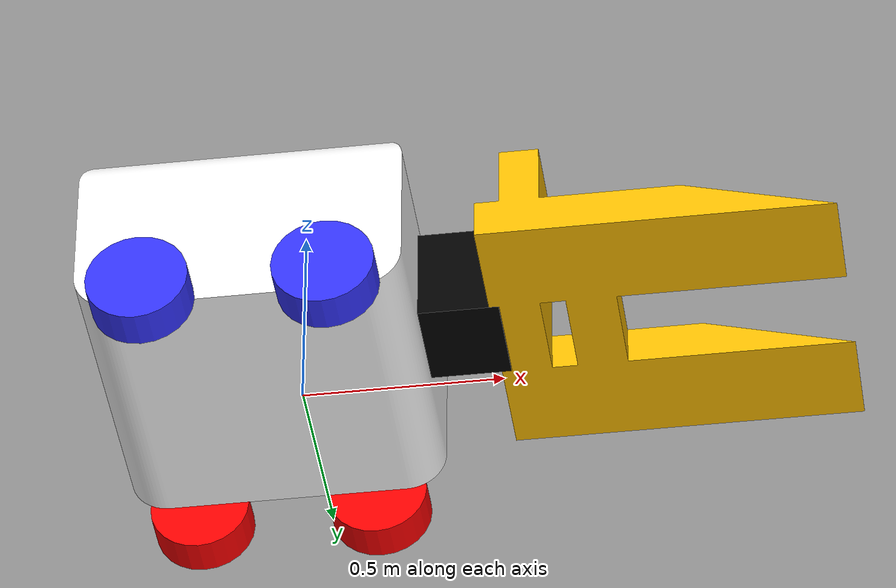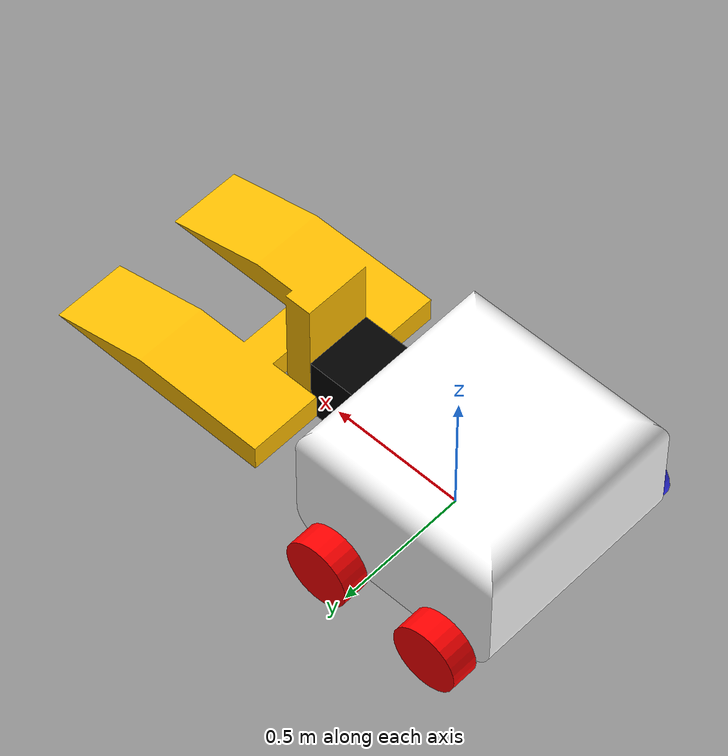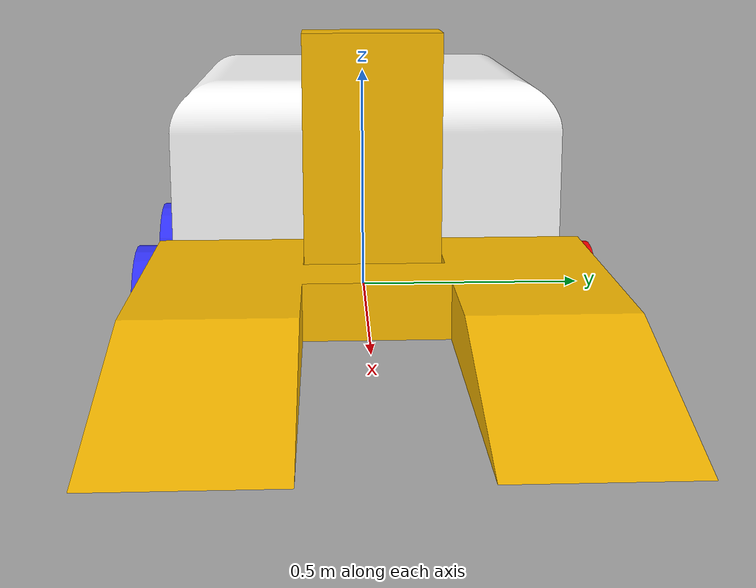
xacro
<?xml version="1.0"?>
<robot xmlns:xacro="http://www.ros.org/wiki/xacro" >

    <xacro:include filename="inertial_macros.xacro" />

    <material name="white">
        <color rgba="1 1 1 1" />
    </material>

    <material name="orange">
        <color rgba="1 0.3 0.1 1"/>
    </material>

    <material name="blue">
        <color rgba="0.2 0.2 1 1"/>
    </material>

    <material name="black">
        <color rgba="0 0 0 1"/>
    </material>

    <material name="red">
        <color rgba="1 0 0 1"/>
    </material>

    <material name="green">
        <color rgba="0 1 0 1"/>
    </material>

    <material name="yellow">
        <color rgba="255 190 0 0.8"/>
    </material>

    <!-- BASE LINK -->
    <link name="base_link"></link>
    <link name="chassis">
         <visual>
             <origin xyz="0 0 0" rpy="0 0 0"/>
             <geometry>
                 <mesh filename = "file://$(find articubot_one)/description/DaeFile/Body.dae" scale = "1 1 1"/>
             </geometry>
             <material name="white"/>
         </visual>
         <collision>
             <origin xyz="0 0 0" rpy="0 0 0"/>
             <geometry>
                 <mesh filename = "file://$(find articubot_one)/description/DaeFile/Body.dae" scale = "1 1 1"/>
             </geometry>
         </collision>
         <xacro:inertial_box mass="100" x="0.8" y="0.8" z="0.5">
             <origin xyz="0 0 0.25" rpy="0 0 0"/>
         </xacro:inertial_box>
    </link>
    <gazebo reference="chassis">
         <material>Gazebo/White</material>
    </gazebo>

    <!-- BASE_FOOTPRINT LINK -->
    <joint name="base_footprint_joint" type="fixed">
         <parent link="base_link"/>
         <child link="base_footprint"/>
         <origin xyz="0 0 0" rpy="0 0 0"/>
         <dynamics damping="1" friction="500"/>
    </joint>
    <link name="base_footprint"></link>
    <joint name="chassis_joint" type="fixed">
         <parent link="base_link"/>
         <child link="chassis"/>
         <origin xyz="-0.1 0 0"/>
    </joint>

    <!--WHEEL DESCRIPTION-->
    <!--Front Wheel-->
    <joint name="right_front_wheel_joint" type="continuous">
        <parent link="base_link"/>
        <child link="right_front_wheel"/>
        <origin xyz="0.125 0.45 0" rpy="-${pi/2} 0 0"/>
        <axis xyz="0 0 1"/>
        <dynamics damping="1" friction="10"/>
    </joint>

    <link name="right_front_wheel">
        <visual>
            <geometry>
                <cylinder length="0.1" radius="0.125" />
            </geometry>
            <material name="red"/>
        </visual>
        <collision>
            <geometry>
                <cylinder length="0.1" radius="0.125" />
            </geometry>
        </collision>
        <xacro:inertial_cylinder mass="1" length="0.1" radius="0.125">
            <origin xyz="0 0 0" rpy="0 0 0"/>
        </xacro:inertial_cylinder>
    </link>
    <gazebo reference="right_front_wheel">
        <material>Gazebo/Red</material>
    </gazebo>

    <joint name="left_front_wheel_joint" type="continuous">
        <parent link="base_link"/>
        <child link="left_front_wheel"/>
        <origin xyz="0.125 -0.45 0" rpy="${pi/2} 0 0"/>
        <axis xyz="0 0 1"/>
        <dynamics damping="1" friction="10"/>
    </joint>

    <link name="left_front_wheel">
        <visual>
            <geometry>
                <cylinder length="0.1" radius="0.125" />
            </geometry>
            <material name="blue"/>
        </visual>
        <collision>
            <geometry>
                <cylinder length="0.1" radius="0.125" />
            </geometry>
        </collision>
        <xacro:inertial_cylinder mass="1" length="0.1" radius="0.125">
            <origin xyz="0 0 0" rpy="0 0 0"/>
        </xacro:inertial_cylinder>
    </link>
    <gazebo reference="left_front_wheel">
        <material>Gazebo/Blue</material>
    </gazebo>

    <!--Back Wheel-->
    <joint name="right_back_wheel_joint" type="continuous">
        <parent link="base_link"/>
        <child link="right_back_wheel"/>
        <origin xyz="-0.325 0.45 0" rpy="-${pi/2} 0 0"/>
        <axis xyz="0 0 1"/>
        <dynamics damping="1" friction="10"/>
    </joint>

    <link name="right_back_wheel">
        <visual>
            <geometry>
                <cylinder length="0.1" radius="0.125" />
            </geometry>
            <material name="red"/>
        </visual>
        <collision>
            <geometry>
                <cylinder length="0.1" radius="0.125" />
            </geometry>
        </collision>
        <xacro:inertial_cylinder mass="1" length="0.1" radius="0.125">
            <origin xyz="0 0 0" rpy="0 0 0"/>
        </xacro:inertial_cylinder>
    </link>
    <gazebo reference="right_back_wheel">
        <material>Gazebo/Red</material>
    </gazebo>

    <joint name="left_back_wheel_joint" type="continuous">
        <parent link="base_link"/>
        <child link="left_back_wheel"/>
        <origin xyz="-0.325 -0.45 0" rpy="${pi/2} 0 0"/>
        <axis xyz="0 0 1"/>
        <dynamics damping="1" friction="10"/>
    </joint>

    <link name="left_back_wheel">
        <visual>
            <geometry>
                <cylinder length="0.1" radius="0.125" />
            </geometry>
            <material name="blue"/>
        </visual>
        <collision>
            <geometry>
                <cylinder length="0.1" radius="0.125" />
            </geometry>
        </collision>
        <xacro:inertial_cylinder mass="1" length="0.1" radius="0.125">
            <origin xyz="0 0 0" rpy="0 0 0"/>
        </xacro:inertial_cylinder>
    </link>
    <gazebo reference="left_back_wheel">
        <material>Gazebo/Blue</material>
    </gazebo>

    <!--ARM SLIDER PREFERENCE-->
    <joint name="arm_slider_joint" type="prismatic">
        <parent link="base_link"/>
        <child link="arm_slider"/>
        <origin xyz="0.2 0 0.25" rpy="0 0 0"/>
        <axis xyz="1 0 0"/>
        <limit lower="-0.155" upper="0.07" effort="0.00005" velocity="1"/>
        <dynamics damping="1" friction="50"/>
    </joint>

    <link name="arm_slider">
        <visual>
            <geometry>
                <mesh filename = "file://$(find articubot_one)/description/DaeFile/Arm.dae" scale = "1 1 1"/>
            </geometry>
            <material name="black"/>
        </visual>
        <collision>
            <geometry>
                <mesh filename = "file://$(find articubot_one)/description/DaeFile/Arm.dae" scale = "1 1 1"/>
            </geometry>
        </collision>
        <xacro:inertial_box mass="0.5" x="0.3" y="0.25" z="0.25">
             <origin xyz="0.15 0 0" rpy="0 0 0"/>
        </xacro:inertial_box>
    </link>
    <gazebo reference="arm_slider">
        <material>Gazebo/Black</material>
    </gazebo>

    <!--Lifter DESCRIPTION-->
    <joint name="lifter_joint" type="prismatic">
        <parent link="arm_slider"/>
        <child link="lifter"/>
        <origin xyz="0.3 0 0.125" rpy="0 0 0"/>
        <axis xyz="0 0 1"/>
        <limit lower="-0.23" upper="0.145" effort="1" velocity="1"/>
        <dynamics damping="1" friction="150" />
    </joint>

    <link name="lifter">
        <visual>
            <geometry>
                <mesh filename = "file://$(find articubot_one)/description/DaeFile/Lifter.dae" scale = "1 1 1"/>
            </geometry>
            <material name="yellow"/>
        </visual>
        <collision>
            <geometry>
                <mesh filename = "file://$(find articubot_one)/description/DaeFile/Lifter.dae" scale = "1 1 1"/>
            </geometry>
        </collision>
        <xacro:inertial_box mass="0.5" x="0.875" y="0.8" z="0.5">
             <origin xyz="0.415 0 0" rpy="0 0 0"/>
        </xacro:inertial_box>
    </link>
    <gazebo reference="lifter">
        <material>Gazebo/Yellow</material>
    </gazebo>
</robot>

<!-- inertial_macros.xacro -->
<robot xmlns:xacro="http://www.ros.org/wiki/xacro" >

    <!-- Specify some standard inertial
    calculations https://en.wikipedia.org/wiki/List_of_moments_of_inertia -->
    <!-- These make use of xacro's mathematical functionality -->

    <!-- Define Sphere-->
    <xacro:macro name="inertial_sphere" params="mass radius *origin">
        <inertial>
            <xacro:insert_block name="origin"/>
            <mass value="${mass}" />
            <inertia ixx="${(2/5) * mass * (radius*radius)}" ixy="0.0" ixz="0.0"
                    iyy="${(2/5) * mass * (radius*radius)}" iyz="0.0"
                    izz="${(2/5) * mass * (radius*radius)}" />
        </inertial>
    </xacro:macro>

    <!-- Define Box -->
    <xacro:macro name="inertial_box" params="mass x y z *origin">
        <inertial>
            <xacro:insert_block name="origin"/>
            <mass value="${mass}" />
            <inertia ixx="${(1/12) * mass * (y*y+z*z)}" ixy="0.0" ixz="0.0"
                    iyy="${(1/12) * mass * (x*x+z*z)}" iyz="0.0"
                    izz="${(1/12) * mass * (x*x+y*y)}" />
        </inertial>
    </xacro:macro>

    <!-- Define Cylinder -->
    <xacro:macro name="inertial_cylinder" params="mass length radius *origin">
        <inertial>
            <xacro:insert_block name="origin"/>
            <mass value="${mass}" />
            <inertia ixx="${(1/12) * mass * (3*radius*radius + length*length)}" ixy="0.0" ixz="0.0"
                    iyy="${(1/12) * mass * (3*radius*radius + length*length)}" iyz="0.0"
                    izz="${(1/2) * mass * (radius*radius)}" />
        </inertial>
    </xacro:macro>

</robot>
